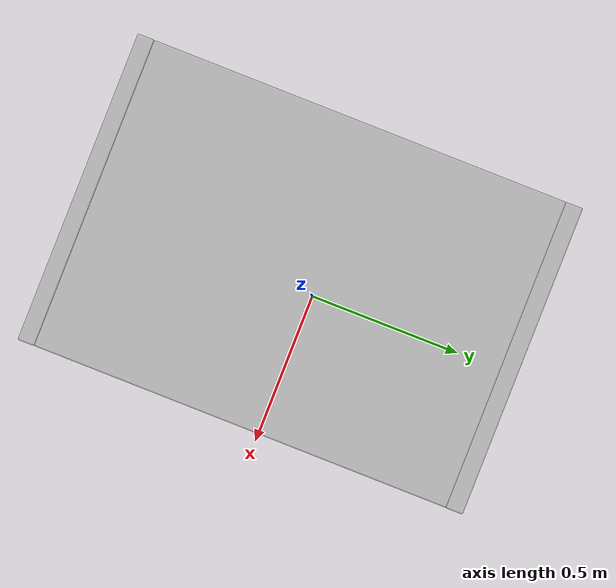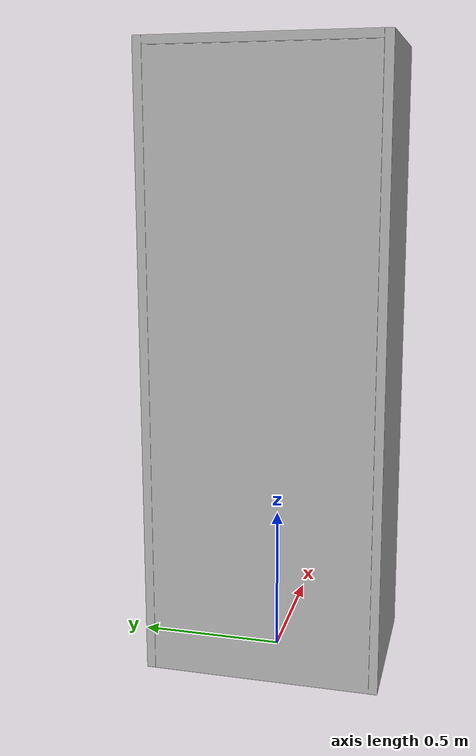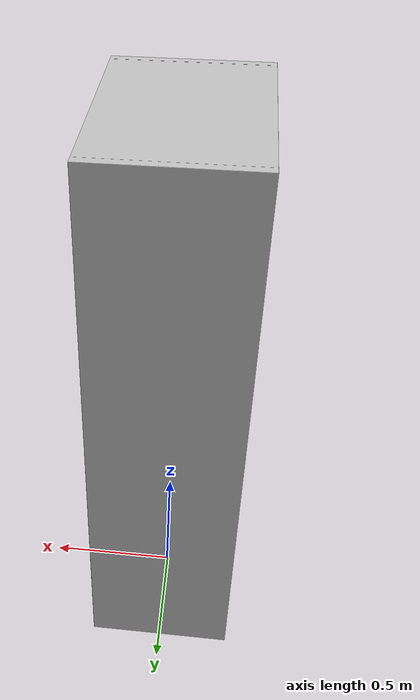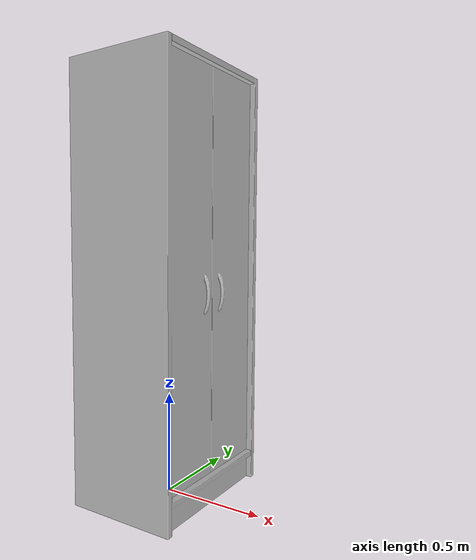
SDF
<?xml version='1.0'?>
<sdf version='1.4'>
  <model name='266'>
    <pose>0 0 0 0 0 0</pose>
    <static>true</static>
    <link name='link'>
      <collision name='collision'>
        <pose>0 0 0 0 0 0</pose>
        <geometry>
          <box>
            <size>0.550716 0.8 2</size>
          </box>
        </geometry>
      </collision>
      <visual name='visual'>
        <pose>0 0 0 0 0 0</pose>
        <geometry>
          <mesh><uri>model://266/266.dae</uri></mesh>
        </geometry>
      </visual>
    </link>
  </model>
</sdf>
